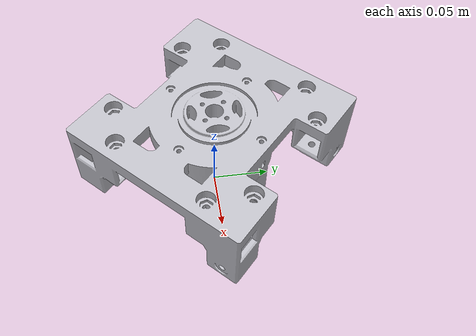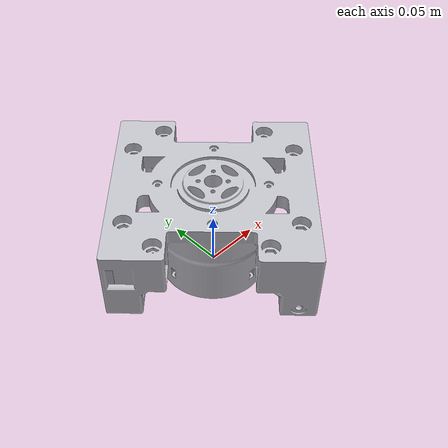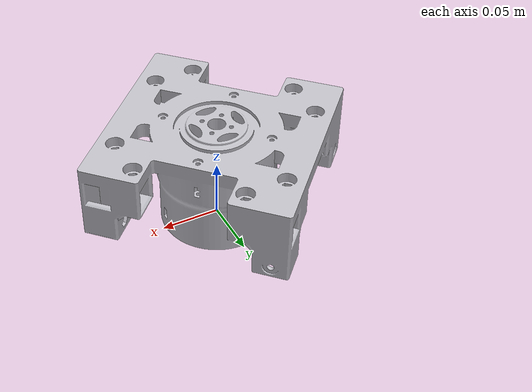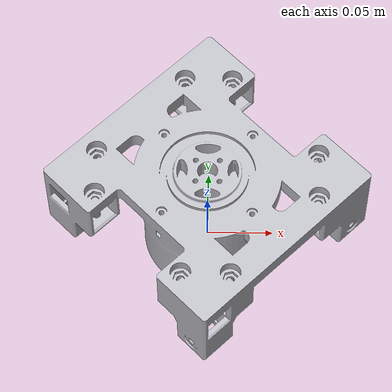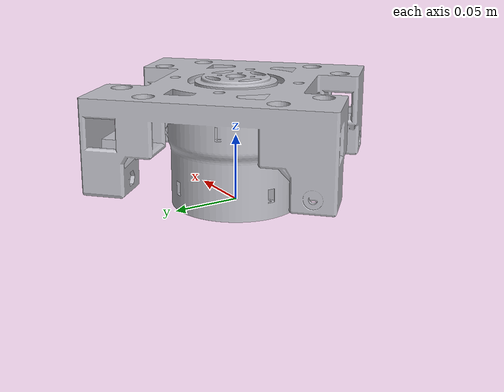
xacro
<?xml version="1.0" ?>
<robot name="assembly" xmlns:xacro="http://www.ros.org/wiki/xacro">

<xacro:include filename="$(find assembly_description)/urdf/materials.xacro" />
<xacro:include filename="$(find assembly_description)/urdf/assembly.trans" />
<xacro:include filename="$(find assembly_description)/urdf/assembly.gazebo" />
<link name="dummy">
   </link>
<link name="base_link">
  <inertial>
    <origin rpy="0 0 0" xyz="-0.051938368359397434 0.19689424962521151 0.3655730227509547"/>
    <mass value="861.8943143893492"/>
    <inertia ixx="97.815129" ixy="-1.205347" ixz="1.258738" iyy="74.989482" iyz="10.595435" izz="44.126236"/>
  </inertial>
  <visual>
    <origin rpy="0 0 0" xyz="0 0 0"/>
    <geometry>
      <mesh filename="package://assembly_description/meshes/base_link.stl" scale="0.001 0.001 0.001"/>
    </geometry>
    <material name="silver_default"/>
  </visual>
  <collision>
    <origin rpy="0 0 0" xyz="0 0 0"/>
    <geometry>
      <mesh filename="package://assembly_description/meshes/base_link.stl" scale="0.001 0.001 0.001"/>
    </geometry>
  </collision>
</link>
<joint name="dummy_joint" type="fixed">
     <parent link="dummy"/>
     <child link="base_link"/>
   </joint>

</robot>
